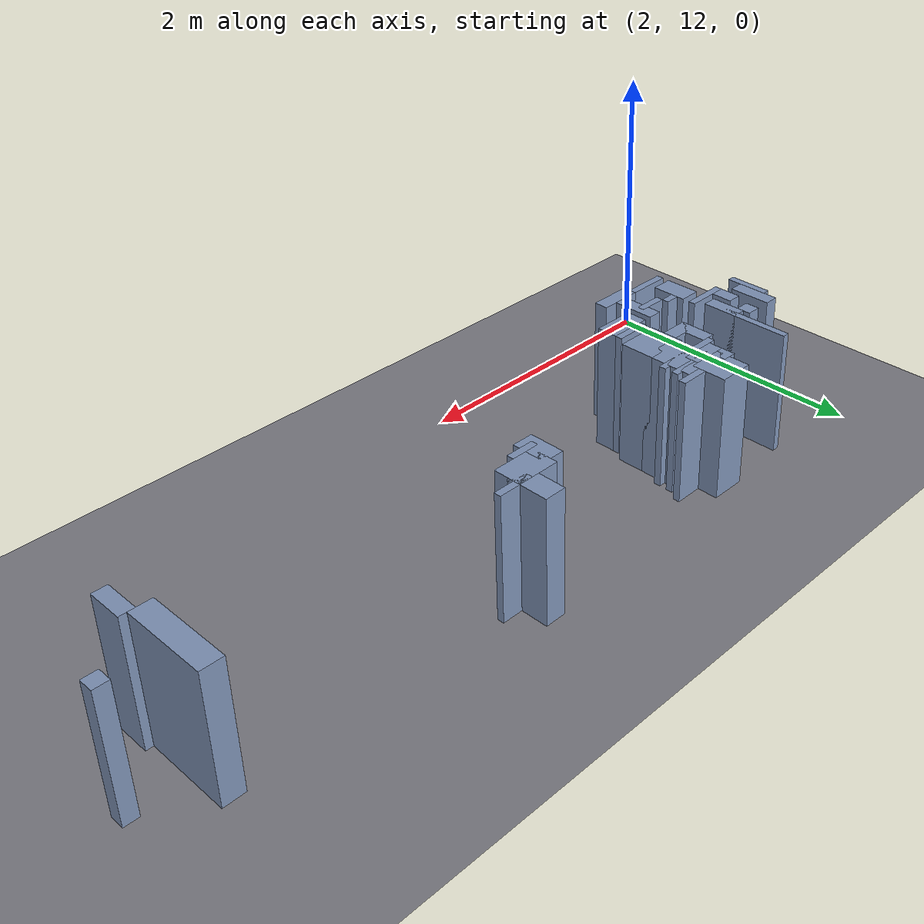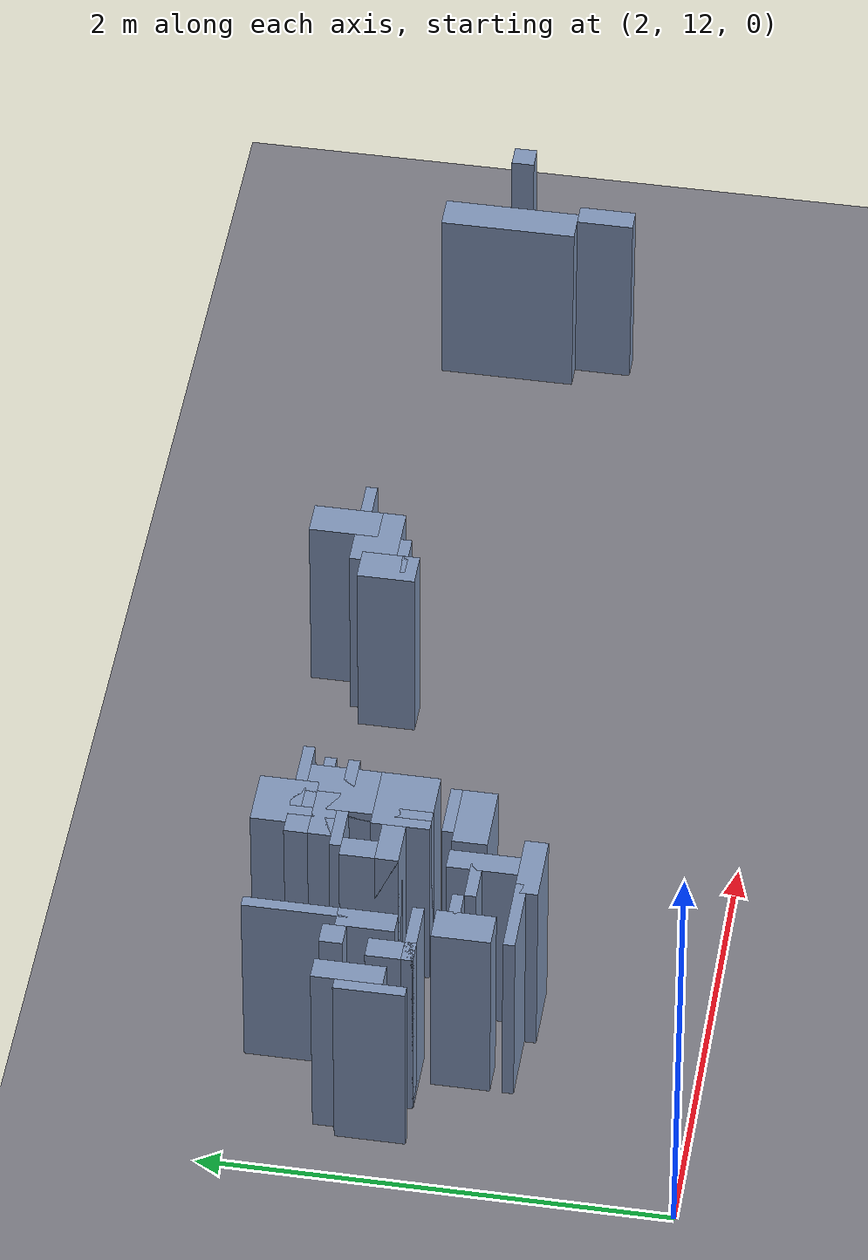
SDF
<sdf version="1.8">
 <world name="capture_fresh">
  <model name="ground_plane">
   <static>true</static>
   <link name="link">
    <collision name="collision">
     <geometry><plane><normal>0 0 1</normal><size>80 80</size></plane></geometry>
    </collision>
    <visual name="visual">
     <geometry><plane><normal>0 0 1</normal><size>80 80</size></plane></geometry>
     <material><ambient>0.40 0.40 0.42 1</ambient><diffuse>0.48 0.48 0.51 1</diffuse></material>
    </visual>
   </link>
  </model>
  <model name="obstacle_129">
   <static>true</static>
   <pose>3.407 13.783 0.450 0 0 0</pose>
   <link name="link">
    <collision name="collision"><geometry><box><size>0.350 0.050 0.900</size></box></geometry></collision>
    <visual name="visual">
     <geometry><box><size>0.350 0.050 0.900</size></box></geometry>
     <material>
      <ambient>0.42 0.48 0.58 1</ambient>
      <diffuse>0.50 0.58 0.72 1</diffuse>
      <specular>0.15 0.15 0.15 1</specular>
     </material>
    </visual>
   </link>
  </model>
  <model name="obstacle_131">
   <static>true</static>
   <pose>5.057 13.783 0.450 0 0 0</pose>
   <link name="link">
    <collision name="collision"><geometry><box><size>0.250 0.050 0.900</size></box></geometry></collision>
    <visual name="visual">
     <geometry><box><size>0.250 0.050 0.900</size></box></geometry>
     <material>
      <ambient>0.42 0.48 0.58 1</ambient>
      <diffuse>0.50 0.58 0.72 1</diffuse>
      <specular>0.15 0.15 0.15 1</specular>
     </material>
    </visual>
   </link>
  </model>
  <model name="obstacle_133">
   <static>true</static>
   <pose>3.357 13.683 0.450 0 0 0</pose>
   <link name="link">
    <collision name="collision"><geometry><box><size>0.350 0.050 0.900</size></box></geometry></collision>
    <visual name="visual">
     <geometry><box><size>0.350 0.050 0.900</size></box></geometry>
     <material>
      <ambient>0.42 0.48 0.58 1</ambient>
      <diffuse>0.50 0.58 0.72 1</diffuse>
      <specular>0.15 0.15 0.15 1</specular>
     </material>
    </visual>
   </link>
  </model>
  <model name="obstacle_134">
   <static>true</static>
   <pose>4.957 13.858 0.450 0 0 0</pose>
   <link name="link">
    <collision name="collision"><geometry><box><size>0.150 0.300 0.900</size></box></geometry></collision>
    <visual name="visual">
     <geometry><box><size>0.150 0.300 0.900</size></box></geometry>
     <material>
      <ambient>0.42 0.48 0.58 1</ambient>
      <diffuse>0.50 0.58 0.72 1</diffuse>
      <specular>0.15 0.15 0.15 1</specular>
     </material>
    </visual>
   </link>
  </model>
  <model name="obstacle_135">
   <static>true</static>
   <pose>3.257 13.833 0.450 0 0 0</pose>
   <link name="link">
    <collision name="collision"><geometry><box><size>0.250 0.250 0.900</size></box></geometry></collision>
    <visual name="visual">
     <geometry><box><size>0.250 0.250 0.900</size></box></geometry>
     <material>
      <ambient>0.42 0.48 0.58 1</ambient>
      <diffuse>0.50 0.58 0.72 1</diffuse>
      <specular>0.15 0.15 0.15 1</specular>
     </material>
    </visual>
   </link>
  </model>
  <model name="obstacle_136">
   <static>true</static>
   <pose>3.207 13.658 0.450 0 0 0</pose>
   <link name="link">
    <collision name="collision"><geometry><box><size>0.250 0.100 0.900</size></box></geometry></collision>
    <visual name="visual">
     <geometry><box><size>0.250 0.100 0.900</size></box></geometry>
     <material>
      <ambient>0.42 0.48 0.58 1</ambient>
      <diffuse>0.50 0.58 0.72 1</diffuse>
      <specular>0.15 0.15 0.15 1</specular>
     </material>
    </visual>
   </link>
  </model>
  <model name="obstacle_138">
   <static>true</static>
   <pose>3.282 13.583 0.450 0 0 0</pose>
   <link name="link">
    <collision name="collision"><geometry><box><size>0.500 0.050 0.900</size></box></geometry></collision>
    <visual name="visual">
     <geometry><box><size>0.500 0.050 0.900</size></box></geometry>
     <material>
      <ambient>0.42 0.48 0.58 1</ambient>
      <diffuse>0.50 0.58 0.72 1</diffuse>
      <specular>0.15 0.15 0.15 1</specular>
     </material>
    </visual>
   </link>
  </model>
  <model name="obstacle_139">
   <static>true</static>
   <pose>4.882 13.708 0.450 0 0 0</pose>
   <link name="link">
    <collision name="collision"><geometry><box><size>0.300 0.200 0.900</size></box></geometry></collision>
    <visual name="visual">
     <geometry><box><size>0.300 0.200 0.900</size></box></geometry>
     <material>
      <ambient>0.42 0.48 0.58 1</ambient>
      <diffuse>0.50 0.58 0.72 1</diffuse>
      <specular>0.15 0.15 0.15 1</specular>
     </material>
    </visual>
   </link>
  </model>
  <model name="obstacle_140">
   <static>true</static>
   <pose>4.782 13.583 0.450 0 0 0</pose>
   <link name="link">
    <collision name="collision"><geometry><box><size>0.200 0.050 0.900</size></box></geometry></collision>
    <visual name="visual">
     <geometry><box><size>0.200 0.050 0.900</size></box></geometry>
     <material>
      <ambient>0.42 0.48 0.58 1</ambient>
      <diffuse>0.50 0.58 0.72 1</diffuse>
      <specular>0.15 0.15 0.15 1</specular>
     </material>
    </visual>
   </link>
  </model>
  <model name="obstacle_141">
   <static>true</static>
   <pose>4.707 13.633 0.450 0 0 0</pose>
   <link name="link">
    <collision name="collision"><geometry><box><size>0.150 0.250 0.900</size></box></geometry></collision>
    <visual name="visual">
     <geometry><box><size>0.150 0.250 0.900</size></box></geometry>
     <material>
      <ambient>0.42 0.48 0.58 1</ambient>
      <diffuse>0.50 0.58 0.72 1</diffuse>
      <specular>0.15 0.15 0.15 1</specular>
     </material>
    </visual>
   </link>
  </model>
  <model name="obstacle_142">
   <static>true</static>
   <pose>3.132 13.708 0.450 0 0 0</pose>
   <link name="link">
    <collision name="collision"><geometry><box><size>0.100 0.200 0.900</size></box></geometry></collision>
    <visual name="visual">
     <geometry><box><size>0.100 0.200 0.900</size></box></geometry>
     <material>
      <ambient>0.42 0.48 0.58 1</ambient>
      <diffuse>0.50 0.58 0.72 1</diffuse>
      <specular>0.15 0.15 0.15 1</specular>
     </material>
    </visual>
   </link>
  </model>
  <model name="obstacle_143">
   <static>true</static>
   <pose>2.532 13.508 0.450 0 0 0</pose>
   <link name="link">
    <collision name="collision"><geometry><box><size>0.100 0.100 0.900</size></box></geometry></collision>
    <visual name="visual">
     <geometry><box><size>0.100 0.100 0.900</size></box></geometry>
     <material>
      <ambient>0.42 0.48 0.58 1</ambient>
      <diffuse>0.50 0.58 0.72 1</diffuse>
      <specular>0.15 0.15 0.15 1</specular>
     </material>
    </visual>
   </link>
  </model>
  <model name="obstacle_145">
   <static>true</static>
   <pose>7.432 13.458 0.450 0 0 0</pose>
   <link name="link">
    <collision name="collision"><geometry><box><size>0.100 0.100 0.900</size></box></geometry></collision>
    <visual name="visual">
     <geometry><box><size>0.100 0.100 0.900</size></box></geometry>
     <material>
      <ambient>0.42 0.48 0.58 1</ambient>
      <diffuse>0.50 0.58 0.72 1</diffuse>
      <specular>0.15 0.15 0.15 1</specular>
     </material>
    </visual>
   </link>
  </model>
  <model name="obstacle_146">
   <static>true</static>
   <pose>3.332 13.333 0.450 0 0 0</pose>
   <link name="link">
    <collision name="collision"><geometry><box><size>0.300 0.250 0.900</size></box></geometry></collision>
    <visual name="visual">
     <geometry><box><size>0.300 0.250 0.900</size></box></geometry>
     <material>
      <ambient>0.42 0.48 0.58 1</ambient>
      <diffuse>0.50 0.58 0.72 1</diffuse>
      <specular>0.15 0.15 0.15 1</specular>
     </material>
    </visual>
   </link>
  </model>
  <model name="obstacle_147">
   <static>true</static>
   <pose>3.082 13.358 0.450 0 0 0</pose>
   <link name="link">
    <collision name="collision"><geometry><box><size>0.200 0.100 0.900</size></box></geometry></collision>
    <visual name="visual">
     <geometry><box><size>0.200 0.100 0.900</size></box></geometry>
     <material>
      <ambient>0.42 0.48 0.58 1</ambient>
      <diffuse>0.50 0.58 0.72 1</diffuse>
      <specular>0.15 0.15 0.15 1</specular>
     </material>
    </visual>
   </link>
  </model>
  <model name="obstacle_148">
   <static>true</static>
   <pose>2.332 13.408 0.450 0 0 0</pose>
   <link name="link">
    <collision name="collision"><geometry><box><size>0.100 0.300 0.900</size></box></geometry></collision>
    <visual name="visual">
     <geometry><box><size>0.100 0.300 0.900</size></box></geometry>
     <material>
      <ambient>0.42 0.48 0.58 1</ambient>
      <diffuse>0.50 0.58 0.72 1</diffuse>
      <specular>0.15 0.15 0.15 1</specular>
     </material>
    </visual>
   </link>
  </model>
  <model name="obstacle_149">
   <static>true</static>
   <pose>2.582 13.183 0.450 0 0 0</pose>
   <link name="link">
    <collision name="collision"><geometry><box><size>0.300 0.050 0.900</size></box></geometry></collision>
    <visual name="visual">
     <geometry><box><size>0.300 0.050 0.900</size></box></geometry>
     <material>
      <ambient>0.42 0.48 0.58 1</ambient>
      <diffuse>0.50 0.58 0.72 1</diffuse>
      <specular>0.15 0.15 0.15 1</specular>
     </material>
    </visual>
   </link>
  </model>
  <model name="obstacle_150">
   <static>true</static>
   <pose>3.032 13.433 0.450 0 0 0</pose>
   <link name="link">
    <collision name="collision"><geometry><box><size>0.100 0.250 0.900</size></box></geometry></collision>
    <visual name="visual">
     <geometry><box><size>0.100 0.250 0.900</size></box></geometry>
     <material>
      <ambient>0.42 0.48 0.58 1</ambient>
      <diffuse>0.50 0.58 0.72 1</diffuse>
      <specular>0.15 0.15 0.15 1</specular>
     </material>
    </visual>
   </link>
  </model>
  <model name="obstacle_152">
   <static>true</static>
   <pose>3.357 13.583 0.450 0 0 0</pose>
   <link name="link">
    <collision name="collision"><geometry><box><size>0.250 0.350 0.900</size></box></geometry></collision>
    <visual name="visual">
     <geometry><box><size>0.250 0.350 0.900</size></box></geometry>
     <material>
      <ambient>0.42 0.48 0.58 1</ambient>
      <diffuse>0.50 0.58 0.72 1</diffuse>
      <specular>0.15 0.15 0.15 1</specular>
     </material>
    </visual>
   </link>
  </model>
  <model name="obstacle_153">
   <static>true</static>
   <pose>3.307 13.133 0.450 0 0 0</pose>
   <link name="link">
    <collision name="collision"><geometry><box><size>0.250 0.050 0.900</size></box></geometry></collision>
    <visual name="visual">
     <geometry><box><size>0.250 0.050 0.900</size></box></geometry>
     <material>
      <ambient>0.42 0.48 0.58 1</ambient>
      <diffuse>0.50 0.58 0.72 1</diffuse>
      <specular>0.15 0.15 0.15 1</specular>
     </material>
    </visual>
   </link>
  </model>
  <model name="obstacle_154">
   <static>true</static>
   <pose>7.007 13.458 0.450 0 0 0</pose>
   <link name="link">
    <collision name="collision"><geometry><box><size>0.150 0.600 0.900</size></box></geometry></collision>
    <visual name="visual">
     <geometry><box><size>0.150 0.600 0.900</size></box></geometry>
     <material>
      <ambient>0.42 0.48 0.58 1</ambient>
      <diffuse>0.50 0.58 0.72 1</diffuse>
      <specular>0.15 0.15 0.15 1</specular>
     </material>
    </visual>
   </link>
  </model>
  <model name="obstacle_155">
   <static>true</static>
   <pose>2.632 13.383 0.450 0 0 0</pose>
   <link name="link">
    <collision name="collision"><geometry><box><size>0.100 0.250 0.900</size></box></geometry></collision>
    <visual name="visual">
     <geometry><box><size>0.100 0.250 0.900</size></box></geometry>
     <material>
      <ambient>0.42 0.48 0.58 1</ambient>
      <diffuse>0.50 0.58 0.72 1</diffuse>
      <specular>0.15 0.15 0.15 1</specular>
     </material>
    </visual>
   </link>
  </model>
  <model name="obstacle_156">
   <static>true</static>
   <pose>2.482 13.258 0.450 0 0 0</pose>
   <link name="link">
    <collision name="collision"><geometry><box><size>0.100 0.200 0.900</size></box></geometry></collision>
    <visual name="visual">
     <geometry><box><size>0.100 0.200 0.900</size></box></geometry>
     <material>
      <ambient>0.42 0.48 0.58 1</ambient>
      <diffuse>0.50 0.58 0.72 1</diffuse>
      <specular>0.15 0.15 0.15 1</specular>
     </material>
    </visual>
   </link>
  </model>
  <model name="obstacle_157">
   <static>true</static>
   <pose>2.732 13.033 0.450 0 0 0</pose>
   <link name="link">
    <collision name="collision"><geometry><box><size>0.200 0.050 0.900</size></box></geometry></collision>
    <visual name="visual">
     <geometry><box><size>0.200 0.050 0.900</size></box></geometry>
     <material>
      <ambient>0.42 0.48 0.58 1</ambient>
      <diffuse>0.50 0.58 0.72 1</diffuse>
      <specular>0.15 0.15 0.15 1</specular>
     </material>
    </visual>
   </link>
  </model>
  <model name="obstacle_158">
   <static>true</static>
   <pose>2.932 12.983 0.450 0 0 0</pose>
   <link name="link">
    <collision name="collision"><geometry><box><size>0.200 0.050 0.900</size></box></geometry></collision>
    <visual name="visual">
     <geometry><box><size>0.200 0.050 0.900</size></box></geometry>
     <material>
      <ambient>0.42 0.48 0.58 1</ambient>
      <diffuse>0.50 0.58 0.72 1</diffuse>
      <specular>0.15 0.15 0.15 1</specular>
     </material>
    </visual>
   </link>
  </model>
  <model name="obstacle_159">
   <static>true</static>
   <pose>3.282 13.033 0.450 0 0 0</pose>
   <link name="link">
    <collision name="collision"><geometry><box><size>0.300 0.150 0.900</size></box></geometry></collision>
    <visual name="visual">
     <geometry><box><size>0.300 0.150 0.900</size></box></geometry>
     <material>
      <ambient>0.42 0.48 0.58 1</ambient>
      <diffuse>0.50 0.58 0.72 1</diffuse>
      <specular>0.15 0.15 0.15 1</specular>
     </material>
    </visual>
   </link>
  </model>
  <model name="obstacle_160">
   <static>true</static>
   <pose>2.257 13.308 0.450 0 0 0</pose>
   <link name="link">
    <collision name="collision"><geometry><box><size>0.050 0.300 0.900</size></box></geometry></collision>
    <visual name="visual">
     <geometry><box><size>0.050 0.300 0.900</size></box></geometry>
     <material>
      <ambient>0.42 0.48 0.58 1</ambient>
      <diffuse>0.50 0.58 0.72 1</diffuse>
      <specular>0.15 0.15 0.15 1</specular>
     </material>
    </visual>
   </link>
  </model>
  <model name="obstacle_161">
   <static>true</static>
   <pose>3.257 13.408 0.450 0 0 0</pose>
   <link name="link">
    <collision name="collision"><geometry><box><size>0.050 0.400 0.900</size></box></geometry></collision>
    <visual name="visual">
     <geometry><box><size>0.050 0.400 0.900</size></box></geometry>
     <material>
      <ambient>0.42 0.48 0.58 1</ambient>
      <diffuse>0.50 0.58 0.72 1</diffuse>
      <specular>0.15 0.15 0.15 1</specular>
     </material>
    </visual>
   </link>
  </model>
  <model name="obstacle_162">
   <static>true</static>
   <pose>2.657 13.608 0.450 0 0 0</pose>
   <link name="link">
    <collision name="collision"><geometry><box><size>0.050 0.600 0.900</size></box></geometry></collision>
    <visual name="visual">
     <geometry><box><size>0.050 0.600 0.900</size></box></geometry>
     <material>
      <ambient>0.42 0.48 0.58 1</ambient>
      <diffuse>0.50 0.58 0.72 1</diffuse>
      <specular>0.15 0.15 0.15 1</specular>
     </material>
    </visual>
   </link>
  </model>
  <model name="obstacle_163">
   <static>true</static>
   <pose>2.657 12.983 0.450 0 0 0</pose>
   <link name="link">
    <collision name="collision"><geometry><box><size>0.150 0.250 0.900</size></box></geometry></collision>
    <visual name="visual">
     <geometry><box><size>0.150 0.250 0.900</size></box></geometry>
     <material>
      <ambient>0.42 0.48 0.58 1</ambient>
      <diffuse>0.50 0.58 0.72 1</diffuse>
      <specular>0.15 0.15 0.15 1</specular>
     </material>
    </visual>
   </link>
  </model>
  <model name="obstacle_164">
   <static>true</static>
   <pose>2.757 12.783 0.450 0 0 0</pose>
   <link name="link">
    <collision name="collision"><geometry><box><size>0.350 0.050 0.900</size></box></geometry></collision>
    <visual name="visual">
     <geometry><box><size>0.350 0.050 0.900</size></box></geometry>
     <material>
      <ambient>0.42 0.48 0.58 1</ambient>
      <diffuse>0.50 0.58 0.72 1</diffuse>
      <specular>0.15 0.15 0.15 1</specular>
     </material>
    </visual>
   </link>
  </model>
  <model name="obstacle_165">
   <static>true</static>
   <pose>7.082 13.033 0.450 0 0 0</pose>
   <link name="link">
    <collision name="collision"><geometry><box><size>0.100 0.250 0.900</size></box></geometry></collision>
    <visual name="visual">
     <geometry><box><size>0.100 0.250 0.900</size></box></geometry>
     <material>
      <ambient>0.42 0.48 0.58 1</ambient>
      <diffuse>0.50 0.58 0.72 1</diffuse>
      <specular>0.15 0.15 0.15 1</specular>
     </material>
    </visual>
   </link>
  </model>
  <model name="obstacle_167">
   <static>true</static>
   <pose>3.032 12.758 0.450 0 0 0</pose>
   <link name="link">
    <collision name="collision"><geometry><box><size>0.300 0.100 0.900</size></box></geometry></collision>
    <visual name="visual">
     <geometry><box><size>0.300 0.100 0.900</size></box></geometry>
     <material>
      <ambient>0.42 0.48 0.58 1</ambient>
      <diffuse>0.50 0.58 0.72 1</diffuse>
      <specular>0.15 0.15 0.15 1</specular>
     </material>
    </visual>
   </link>
  </model>
  <model name="obstacle_168">
   <static>true</static>
   <pose>3.032 12.958 0.450 0 0 0</pose>
   <link name="link">
    <collision name="collision"><geometry><box><size>0.100 0.300 0.900</size></box></geometry></collision>
    <visual name="visual">
     <geometry><box><size>0.100 0.300 0.900</size></box></geometry>
     <material>
      <ambient>0.42 0.48 0.58 1</ambient>
      <diffuse>0.50 0.58 0.72 1</diffuse>
      <specular>0.15 0.15 0.15 1</specular>
     </material>
    </visual>
   </link>
  </model>
 </world>
</sdf>
